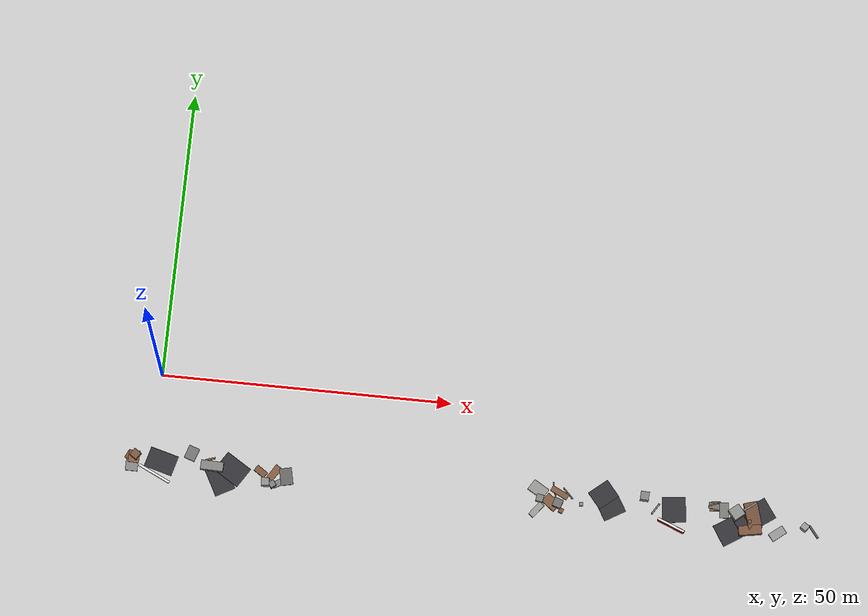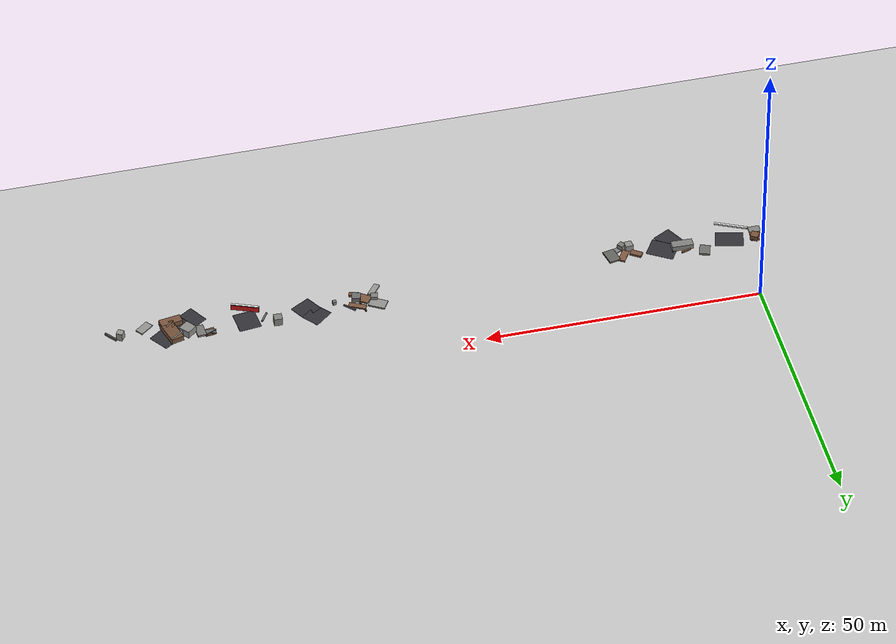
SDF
<sdf version="1.6">
 <world name="navitas_arena">
  <model name="ground_plane">
   <static>true</static>
   <link name="link">
    <collision name="collision">
     <geometry><plane><normal>0 0 1</normal><size>400 400</size></plane></geometry>
     <surface><friction><ode><mu>0.8</mu><mu2>0.8</mu2></ode></friction></surface>
    </collision>
    <visual name="visual">
     <cast_shadows>false</cast_shadows>
     <geometry><plane><normal>0 0 1</normal><size>400 400</size></plane></geometry>
     <material>
      <script><uri>file://media/materials/scripts/gazebo.material</uri><name>Gazebo/Grey</name></script>
     </material>
    </visual>
   </link>
  </model>
  <model name="road_orta_2_2">
   <static>true</static>
   <pose>1.555 -15.042 0.040 0 0 1.306</pose>
   <link name="link">
    <collision name="col"><geometry><box><size>3.557 5.000 0.020</size></box></geometry></collision>
    <visual name="vis">
     <geometry><box><size>3.557 5.000 0.020</size></box></geometry>
     <material><ambient>0.20 0.20 0.22 1</ambient><diffuse>0.20 0.20 0.22 1</diffuse></material>
    </visual>
   </link>
  </model>
  <model name="road_orta_3_4">
   <static>true</static>
   <pose>11.892 -17.135 0.040 0 0 0.494</pose>
   <link name="link">
    <collision name="col"><geometry><box><size>3.588 5.000 0.020</size></box></geometry></collision>
    <visual name="vis">
     <geometry><box><size>3.588 5.000 0.020</size></box></geometry>
     <material><ambient>0.20 0.20 0.22 1</ambient><diffuse>0.20 0.20 0.22 1</diffuse></material>
    </visual>
   </link>
  </model>
  <model name="road_orta_3_5">
   <static>true</static>
   <pose>13.867 -15.238 0.040 0 0 1.009</pose>
   <link name="link">
    <collision name="col"><geometry><box><size>3.876 5.000 0.020</size></box></geometry></collision>
    <visual name="vis">
     <geometry><box><size>3.876 5.000 0.020</size></box></geometry>
     <material><ambient>0.20 0.20 0.22 1</ambient><diffuse>0.20 0.20 0.22 1</diffuse></material>
    </visual>
   </link>
  </model>
  <model name="bar_orta_2b">
   <static>true</static>
   <pose>0.665 -17.469 1.000 0 0 2.699</pose>
   <link name="link">
    <collision name="col"><geometry><box><size>6.000 0.400 0.300</size></box></geometry></collision>
    <visual name="vis">
     <geometry><box><size>6.000 0.400 0.300</size></box></geometry>
     <material><ambient>0.95 0.95 0.95 1</ambient><diffuse>0.95 0.95 0.95 1</diffuse></material>
    </visual>
   </link>
  </model>
  <model name="deb_orta_0">
   <static>true</static>
   <pose>-3.418 -16.008 0.102 0 0 1.560</pose>
   <link name="link">
    <collision name="col"><geometry><box><size>2.370 2.089 0.203</size></box></geometry></collision>
    <visual name="vis">
     <geometry><box><size>2.370 2.089 0.203</size></box></geometry>
     <material><ambient>0.53 0.53 0.52 1</ambient><diffuse>0.53 0.53 0.52 1</diffuse></material>
    </visual>
   </link>
  </model>
  <model name="deb_orta_36">
   <static>true</static>
   <pose>20.948 -17.224 0.542 0 0 0.688</pose>
   <link name="link">
    <collision name="col"><geometry><box><size>1.076 1.076 1.084</size></box></geometry></collision>
    <visual name="vis">
     <geometry><box><size>1.076 1.076 1.084</size></box></geometry>
     <material><ambient>0.49 0.49 0.48 1</ambient><diffuse>0.49 0.49 0.48 1</diffuse></material>
    </visual>
   </link>
  </model>
  <model name="deb_orta_60">
   <static>true</static>
   <pose>-3.622 -14.751 0.103 0 0 2.710</pose>
   <link name="link">
    <collision name="col"><geometry><box><size>1.973 1.338 0.206</size></box></geometry></collision>
    <visual name="vis">
     <geometry><box><size>1.973 1.338 0.206</size></box></geometry>
     <material><ambient>0.45 0.32 0.23 1</ambient><diffuse>0.45 0.32 0.23 1</diffuse></material>
    </visual>
   </link>
  </model>
  <model name="deb_orta_62">
   <static>true</static>
   <pose>18.741 -15.136 0.190 0 0 2.542</pose>
   <link name="link">
    <collision name="col"><geometry><box><size>2.154 1.144 0.381</size></box></geometry></collision>
    <visual name="vis">
     <geometry><box><size>2.154 1.144 0.381</size></box></geometry>
     <material><ambient>0.49 0.34 0.25 1</ambient><diffuse>0.49 0.34 0.25 1</diffuse></material>
    </visual>
   </link>
  </model>
  <model name="deb_orta_86">
   <static>true</static>
   <pose>-3.198 -14.659 0.129 0 0 3.087</pose>
   <link name="link">
    <collision name="col"><geometry><box><size>1.860 2.124 0.257</size></box></geometry></collision>
    <visual name="vis">
     <geometry><box><size>1.860 2.124 0.257</size></box></geometry>
     <material><ambient>0.52 0.36 0.26 1</ambient><diffuse>0.52 0.36 0.26 1</diffuse></material>
    </visual>
   </link>
  </model>
  <model name="deb_orta_88">
   <static>true</static>
   <pose>-2.957 -14.323 0.478 0 0 2.571</pose>
   <link name="link">
    <collision name="col"><geometry><box><size>1.418 1.418 0.956</size></box></geometry></collision>
    <visual name="vis">
     <geometry><box><size>1.418 1.418 0.956</size></box></geometry>
     <material><ambient>0.49 0.34 0.24 1</ambient><diffuse>0.49 0.34 0.24 1</diffuse></material>
    </visual>
   </link>
  </model>
  <model name="deb_orta_95">
   <static>true</static>
   <pose>23.158 -15.568 0.133 0 0 1.784</pose>
   <link name="link">
    <collision name="col"><geometry><box><size>2.950 2.122 0.266</size></box></geometry></collision>
    <visual name="vis">
     <geometry><box><size>2.950 2.122 0.266</size></box></geometry>
     <material><ambient>0.40 0.40 0.39 1</ambient><diffuse>0.40 0.40 0.39 1</diffuse></material>
    </visual>
   </link>
  </model>
  <model name="deb_orta_98">
   <static>true</static>
   <pose>19.721 -16.946 0.593 0 0 1.649</pose>
   <link name="link">
    <collision name="col"><geometry><box><size>1.360 1.360 1.185</size></box></geometry></collision>
    <visual name="vis">
     <geometry><box><size>1.360 1.360 1.185</size></box></geometry>
     <material><ambient>0.57 0.57 0.56 1</ambient><diffuse>0.57 0.57 0.56 1</diffuse></material>
    </visual>
   </link>
  </model>
  <model name="deb_orta_103">
   <static>true</static>
   <pose>21.059 -15.127 0.132 0 0 1.015</pose>
   <link name="link">
    <collision name="col"><geometry><box><size>2.754 1.239 0.264</size></box></geometry></collision>
    <visual name="vis">
     <geometry><box><size>2.754 1.239 0.264</size></box></geometry>
     <material><ambient>0.52 0.36 0.26 1</ambient><diffuse>0.52 0.36 0.26 1</diffuse></material>
    </visual>
   </link>
  </model>
  <model name="deb_orta_112">
   <static>true</static>
   <pose>9.864 -13.842 0.131 0 0 0.315</pose>
   <link name="link">
    <collision name="col"><geometry><box><size>1.840 0.277 0.262</size></box></geometry></collision>
    <visual name="vis">
     <geometry><box><size>1.840 0.277 0.262</size></box></geometry>
     <material><ambient>0.51 0.36 0.26 1</ambient><diffuse>0.51 0.36 0.26 1</diffuse></material>
    </visual>
   </link>
  </model>
  <model name="deb_orta_123">
   <static>true</static>
   <pose>6.635 -13.161 0.180 0 0 1.250</pose>
   <link name="link">
    <collision name="col"><geometry><box><size>2.322 1.904 0.360</size></box></geometry></collision>
    <visual name="vis">
     <geometry><box><size>2.322 1.904 0.360</size></box></geometry>
     <material><ambient>0.45 0.45 0.44 1</ambient><diffuse>0.45 0.45 0.44 1</diffuse></material>
    </visual>
   </link>
  </model>
  <model name="deb_orta_153">
   <static>true</static>
   <pose>22.414 -16.571 0.104 0 0 0.475</pose>
   <link name="link">
    <collision name="col"><geometry><box><size>3.034 1.114 0.208</size></box></geometry></collision>
    <visual name="vis">
     <geometry><box><size>3.034 1.114 0.208</size></box></geometry>
     <material><ambient>0.51 0.51 0.50 1</ambient><diffuse>0.51 0.51 0.50 1</diffuse></material>
    </visual>
   </link>
  </model>
  <model name="chic_orta_0">
   <static>true</static>
   <pose>10.336 -15.075 0.500 0 0 3.113</pose>
   <link name="link">
    <collision name="col"><geometry><box><size>3.870 1.593 1.000</size></box></geometry></collision>
    <visual name="vis">
     <geometry><box><size>3.870 1.593 1.000</size></box></geometry>
     <material><ambient>0.52 0.52 0.51 1</ambient><diffuse>0.52 0.52 0.51 1</diffuse></material>
    </visual>
   </link>
  </model>
  <model name="road_zor_1_3">
   <static>true</static>
   <pose>79.021 -15.228 0.040 0 0 2.109</pose>
   <link name="link">
    <collision name="col"><geometry><box><size>3.454 4.000 0.020</size></box></geometry></collision>
    <visual name="vis">
     <geometry><box><size>3.454 4.000 0.020</size></box></geometry>
     <material><ambient>0.20 0.20 0.22 1</ambient><diffuse>0.20 0.20 0.22 1</diffuse></material>
    </visual>
   </link>
  </model>
  <model name="road_zor_1_4">
   <static>true</static>
   <pose>77.550 -13.153 0.040 0 0 2.266</pose>
   <link name="link">
    <collision name="col"><geometry><box><size>3.448 4.000 0.020</size></box></geometry></collision>
    <visual name="vis">
     <geometry><box><size>3.448 4.000 0.020</size></box></geometry>
     <material><ambient>0.20 0.20 0.22 1</ambient><diffuse>0.20 0.20 0.22 1</diffuse></material>
    </visual>
   </link>
  </model>
  <model name="road_zor_2_2">
   <static>true</static>
   <pose>89.807 -14.588 0.040 0 0 1.679</pose>
   <link name="link">
    <collision name="col"><geometry><box><size>4.393 4.000 0.020</size></box></geometry></collision>
    <visual name="vis">
     <geometry><box><size>4.393 4.000 0.020</size></box></geometry>
     <material><ambient>0.20 0.20 0.22 1</ambient><diffuse>0.20 0.20 0.22 1</diffuse></material>
    </visual>
   </link>
  </model>
  <model name="road_zor_3_4">
   <static>true</static>
   <pose>99.238 -17.444 0.040 0 0 0.566</pose>
   <link name="link">
    <collision name="col"><geometry><box><size>3.592 4.000 0.020</size></box></geometry></collision>
    <visual name="vis">
     <geometry><box><size>3.592 4.000 0.020</size></box></geometry>
     <material><ambient>0.20 0.20 0.22 1</ambient><diffuse>0.20 0.20 0.22 1</diffuse></material>
    </visual>
   </link>
  </model>
  <model name="road_zor_3_5">
   <static>true</static>
   <pose>101.574 -15.861 0.040 0 0 0.623</pose>
   <link name="link">
    <collision name="col"><geometry><box><size>3.853 4.000 0.020</size></box></geometry></collision>
    <visual name="vis">
     <geometry><box><size>3.853 4.000 0.020</size></box></geometry>
     <material><ambient>0.20 0.20 0.22 1</ambient><diffuse>0.20 0.20 0.22 1</diffuse></material>
    </visual>
   </link>
  </model>
  <model name="road_zor_3_6">
   <static>true</static>
   <pose>104.279 -13.926 0.040 0 0 0.620</pose>
   <link name="link">
    <collision name="col"><geometry><box><size>4.599 4.000 0.020</size></box></geometry></collision>
    <visual name="vis">
     <geometry><box><size>4.599 4.000 0.020</size></box></geometry>
     <material><ambient>0.20 0.20 0.22 1</ambient><diffuse>0.20 0.20 0.22 1</diffuse></material>
    </visual>
   </link>
  </model>
  <model name="bar_zor_2">
   <static>true</static>
   <pose>89.528 -17.469 0.500 0 0 2.754</pose>
   <link name="link">
    <collision name="col"><geometry><box><size>5.000 0.500 1.000</size></box></geometry></collision>
    <visual name="vis">
     <geometry><box><size>5.000 0.500 1.000</size></box></geometry>
     <material><ambient>0.85 0.10 0.10 1</ambient><diffuse>0.85 0.10 0.10 1</diffuse></material>
    </visual>
   </link>
  </model>
  <model name="bar_zor_2b">
   <static>true</static>
   <pose>89.528 -17.469 1.000 0 0 2.754</pose>
   <link name="link">
    <collision name="col"><geometry><box><size>5.000 0.400 0.300</size></box></geometry></collision>
    <visual name="vis">
     <geometry><box><size>5.000 0.400 0.300</size></box></geometry>
     <material><ambient>0.95 0.95 0.95 1</ambient><diffuse>0.95 0.95 0.95 1</diffuse></material>
    </visual>
   </link>
  </model>
  <model name="blk_zor_3_0_0">
   <static>true</static>
   <pose>103.305 -14.373 0.500 0 0 1.853</pose>
   <link name="link">
    <collision name="col"><geometry><box><size>4.662 2.347 1.000</size></box></geometry></collision>
    <visual name="vis">
     <geometry><box><size>4.662 2.347 1.000</size></box></geometry>
     <material><ambient>0.46 0.32 0.23 1</ambient><diffuse>0.46 0.32 0.23 1</diffuse></material>
    </visual>
   </link>
  </model>
  <model name="blk_zor_3_0_1">
   <static>true</static>
   <pose>103.215 -16.201 0.500 0 0 0.758</pose>
   <link name="link">
    <collision name="col"><geometry><box><size>2.206 0.399 1.000</size></box></geometry></collision>
    <visual name="vis">
     <geometry><box><size>2.206 0.399 1.000</size></box></geometry>
     <material><ambient>0.47 0.33 0.24 1</ambient><diffuse>0.47 0.33 0.24 1</diffuse></material>
    </visual>
   </link>
  </model>
  <model name="blk_zor_3_0_2">
   <static>true</static>
   <pose>102.805 -15.526 0.500 0 0 0.172</pose>
   <link name="link">
    <collision name="col"><geometry><box><size>0.629 0.629 1.000</size></box></geometry></collision>
    <visual name="vis">
     <geometry><box><size>0.629 0.629 1.000</size></box></geometry>
     <material><ambient>0.51 0.35 0.25 1</ambient><diffuse>0.51 0.35 0.25 1</diffuse></material>
    </visual>
   </link>
  </model>
  <model name="blk_zor_3_0_3">
   <static>true</static>
   <pose>103.033 -16.920 0.500 0 0 0.170</pose>
   <link name="link">
    <collision name="col"><geometry><box><size>3.938 1.626 1.000</size></box></geometry></collision>
    <visual name="vis">
     <geometry><box><size>3.938 1.626 1.000</size></box></geometry>
     <material><ambient>0.49 0.34 0.25 1</ambient><diffuse>0.49 0.34 0.25 1</diffuse></material>
    </visual>
   </link>
  </model>
  <model name="blk_zor_3_0_4">
   <static>true</static>
   <pose>102.470 -13.054 0.500 0 0 0.637</pose>
   <link name="link">
    <collision name="col"><geometry><box><size>3.238 0.293 1.000</size></box></geometry></collision>
    <visual name="vis">
     <geometry><box><size>3.238 0.293 1.000</size></box></geometry>
     <material><ambient>0.52 0.52 0.51 1</ambient><diffuse>0.52 0.52 0.51 1</diffuse></material>
    </visual>
   </link>
  </model>
  <model name="blk_zor_3_0_5">
   <static>true</static>
   <pose>100.511 -14.134 0.701 0 0 2.271</pose>
   <link name="link">
    <collision name="col"><geometry><box><size>2.107 2.107 1.402</size></box></geometry></collision>
    <visual name="vis">
     <geometry><box><size>2.107 2.107 1.402</size></box></geometry>
     <material><ambient>0.56 0.56 0.55 1</ambient><diffuse>0.56 0.56 0.55 1</diffuse></material>
    </visual>
   </link>
  </model>
  <model name="deb_zor_10">
   <static>true</static>
   <pose>73.894 -15.254 0.332 0 0 0.046</pose>
   <link name="link">
    <collision name="col"><geometry><box><size>0.639 0.639 0.664</size></box></geometry></collision>
    <visual name="vis">
     <geometry><box><size>0.639 0.639 0.664</size></box></geometry>
     <material><ambient>0.51 0.51 0.50 1</ambient><diffuse>0.51 0.51 0.50 1</diffuse></material>
    </visual>
   </link>
  </model>
  <model name="deb_zor_37">
   <static>true</static>
   <pose>98.325 -13.861 0.180 0 0 1.654</pose>
   <link name="link">
    <collision name="col"><geometry><box><size>2.617 1.592 0.359</size></box></geometry></collision>
    <visual name="vis">
     <geometry><box><size>2.617 1.592 0.359</size></box></geometry>
     <material><ambient>0.48 0.48 0.47 1</ambient><diffuse>0.48 0.48 0.47 1</diffuse></material>
    </visual>
   </link>
  </model>
  <model name="deb_zor_49">
   <static>true</static>
   <pose>69.889 -15.529 0.476 0 0 1.272</pose>
   <link name="link">
    <collision name="col"><geometry><box><size>1.527 1.527 0.951</size></box></geometry></collision>
    <visual name="vis">
     <geometry><box><size>1.527 1.527 0.951</size></box></geometry>
     <material><ambient>0.44 0.44 0.43 1</ambient><diffuse>0.44 0.44 0.43 1</diffuse></material>
    </visual>
   </link>
  </model>
  <model name="deb_zor_60">
   <static>true</static>
   <pose>107.780 -16.951 0.112 0 0 0.680</pose>
   <link name="link">
    <collision name="col"><geometry><box><size>2.820 1.528 0.224</size></box></geometry></collision>
    <visual name="vis">
     <geometry><box><size>2.820 1.528 0.224</size></box></geometry>
     <material><ambient>0.59 0.59 0.58 1</ambient><diffuse>0.59 0.59 0.58 1</diffuse></material>
    </visual>
   </link>
  </model>
  <model name="deb_zor_61">
   <static>true</static>
   <pose>70.557 -16.719 0.200 0 0 2.777</pose>
   <link name="link">
    <collision name="col"><geometry><box><size>0.789 0.789 0.400</size></box></geometry></collision>
    <visual name="vis">
     <geometry><box><size>0.789 0.789 0.400</size></box></geometry>
     <material><ambient>0.49 0.34 0.24 1</ambient><diffuse>0.49 0.34 0.24 1</diffuse></material>
    </visual>
   </link>
  </model>
  <model name="deb_zor_77">
   <static>true</static>
   <pose>113.908 -16.050 0.193 0 0 2.245</pose>
   <link name="link">
    <collision name="col"><geometry><box><size>2.598 0.279 0.386</size></box></geometry></collision>
    <visual name="vis">
     <geometry><box><size>2.598 0.279 0.386</size></box></geometry>
     <material><ambient>0.42 0.42 0.41 1</ambient><diffuse>0.42 0.42 0.41 1</diffuse></material>
    </visual>
   </link>
  </model>
  <model name="deb_zor_83">
   <static>true</static>
   <pose>66.377 -13.409 0.147 0 0 2.599</pose>
   <link name="link">
    <collision name="col"><geometry><box><size>3.046 2.073 0.293</size></box></geometry></collision>
    <visual name="vis">
     <geometry><box><size>3.046 2.073 0.293</size></box></geometry>
     <material><ambient>0.59 0.59 0.58 1</ambient><diffuse>0.59 0.59 0.58 1</diffuse></material>
    </visual>
   </link>
  </model>
  <model name="deb_zor_94">
   <static>true</static>
   <pose>66.378 -16.971 0.169 0 0 0.912</pose>
   <link name="link">
    <collision name="col"><geometry><box><size>2.862 1.057 0.338</size></box></geometry></collision>
    <visual name="vis">
     <geometry><box><size>2.862 1.057 0.338</size></box></geometry>
     <material><ambient>0.61 0.61 0.60 1</ambient><diffuse>0.61 0.61 0.60 1</diffuse></material>
    </visual>
   </link>
  </model>
  <model name="deb_zor_95">
   <static>true</static>
   <pose>70.074 -13.616 0.138 0 0 2.691</pose>
   <link name="link">
    <collision name="col"><geometry><box><size>3.169 1.019 0.276</size></box></geometry></collision>
    <visual name="vis">
     <geometry><box><size>3.169 1.019 0.276</size></box></geometry>
     <material><ambient>0.51 0.36 0.26 1</ambient><diffuse>0.51 0.36 0.26 1</diffuse></material>
    </visual>
   </link>
  </model>
  <model name="deb_zor_112">
   <static>true</static>
   <pose>71.485 -13.566 0.136 0 0 2.339</pose>
   <link name="link">
    <collision name="col"><geometry><box><size>2.474 0.198 0.273</size></box></geometry></collision>
    <visual name="vis">
     <geometry><box><size>2.474 0.198 0.273</size></box></geometry>
     <material><ambient>0.54 0.54 0.53 1</ambient><diffuse>0.54 0.54 0.53 1</diffuse></material>
    </visual>
   </link>
  </model>
  <model name="deb_zor_113">
   <static>true</static>
   <pose>112.300 -15.515 0.756 0 0 0.975</pose>
   <link name="link">
    <collision name="col"><geometry><box><size>1.155 1.155 1.512</size></box></geometry></collision>
    <visual name="vis">
     <geometry><box><size>1.155 1.155 1.512</size></box></geometry>
     <material><ambient>0.60 0.60 0.58 1</ambient><diffuse>0.60 0.60 0.58 1</diffuse></material>
    </visual>
   </link>
  </model>
  <model name="deb_zor_115">
   <static>true</static>
   <pose>86.653 -14.757 0.101 0 0 1.004</pose>
   <link name="link">
    <collision name="col"><geometry><box><size>2.229 0.291 0.202</size></box></geometry></collision>
    <visual name="vis">
     <geometry><box><size>2.229 0.291 0.202</size></box></geometry>
     <material><ambient>0.42 0.42 0.41 1</ambient><diffuse>0.42 0.42 0.41 1</diffuse></material>
    </visual>
   </link>
  </model>
  <model name="deb_zor_138">
   <static>true</static>
   <pose>96.783 -13.274 0.124 0 0 0.150</pose>
   <link name="link">
    <collision name="col"><geometry><box><size>1.945 1.609 0.247</size></box></geometry></collision>
    <visual name="vis">
     <geometry><box><size>1.945 1.609 0.247</size></box></geometry>
     <material><ambient>0.50 0.35 0.25 1</ambient><diffuse>0.50 0.35 0.25 1</diffuse></material>
    </visual>
   </link>
  </model>
  <model name="deb_zor_152">
   <static>true</static>
   <pose>66.744 -14.972 0.429 0 0 2.983</pose>
   <link name="link">
    <collision name="col"><geometry><box><size>1.240 1.240 0.857</size></box></geometry></collision>
    <visual name="vis">
     <geometry><box><size>1.240 1.240 0.857</size></box></geometry>
     <material><ambient>0.51 0.51 0.50 1</ambient><diffuse>0.51 0.51 0.50 1</diffuse></material>
    </visual>
   </link>
  </model>
  <model name="deb_zor_154">
   <static>true</static>
   <pose>97.016 -13.318 0.149 0 0 3.031</pose>
   <link name="link">
    <collision name="col"><geometry><box><size>2.720 1.002 0.299</size></box></geometry></collision>
    <visual name="vis">
     <geometry><box><size>2.720 1.002 0.299</size></box></geometry>
     <material><ambient>0.45 0.45 0.44 1</ambient><diffuse>0.45 0.45 0.44 1</diffuse></material>
    </visual>
   </link>
  </model>
  <model name="deb_zor_166">
   <static>true</static>
   <pose>84.601 -12.887 0.732 0 0 1.520</pose>
   <link name="link">
    <collision name="col"><geometry><box><size>1.472 1.472 1.464</size></box></geometry></collision>
    <visual name="vis">
     <geometry><box><size>1.472 1.472 1.464</size></box></geometry>
     <material><ambient>0.52 0.52 0.51 1</ambient><diffuse>0.52 0.52 0.51 1</diffuse></material>
    </visual>
   </link>
  </model>
  <model name="deb_zor_177">
   <static>true</static>
   <pose>68.746 -15.422 0.123 0 0 2.491</pose>
   <link name="link">
    <collision name="col"><geometry><box><size>2.769 1.898 0.247</size></box></geometry></collision>
    <visual name="vis">
     <geometry><box><size>2.769 1.898 0.247</size></box></geometry>
     <material><ambient>0.51 0.36 0.26 1</ambient><diffuse>0.51 0.36 0.26 1</diffuse></material>
    </visual>
   </link>
  </model>
  <model name="deb_zor_180">
   <static>true</static>
   <pose>96.543 -12.973 0.195 0 0 0.387</pose>
   <link name="link">
    <collision name="col"><geometry><box><size>1.980 0.166 0.389</size></box></geometry></collision>
    <visual name="vis">
     <geometry><box><size>1.980 0.166 0.389</size></box></geometry>
     <material><ambient>0.47 0.47 0.46 1</ambient><diffuse>0.47 0.47 0.46 1</diffuse></material>
    </visual>
   </link>
  </model>
  <model name="deb_zor_186">
   <static>true</static>
   <pose>69.152 -13.282 0.120 0 0 1.805</pose>
   <link name="link">
    <collision name="col"><geometry><box><size>2.830 0.172 0.240</size></box></geometry></collision>
    <visual name="vis">
     <geometry><box><size>2.830 0.172 0.240</size></box></geometry>
     <material><ambient>0.46 0.32 0.23 1</ambient><diffuse>0.46 0.32 0.23 1</diffuse></material>
    </visual>
   </link>
  </model>
 </world>
</sdf>
